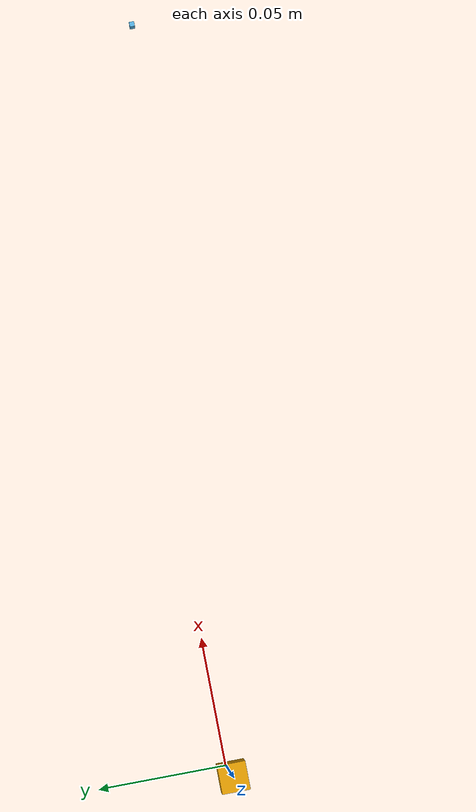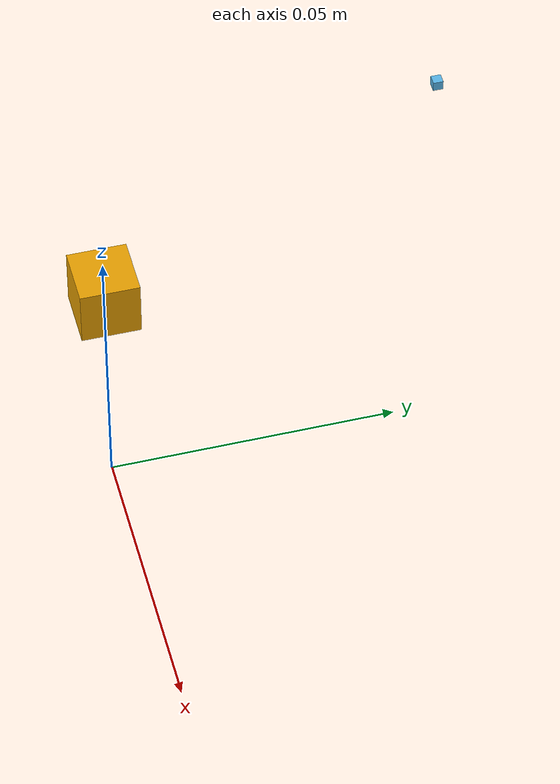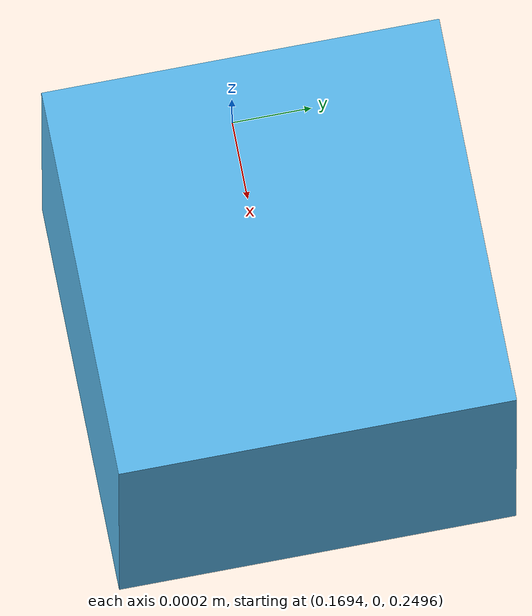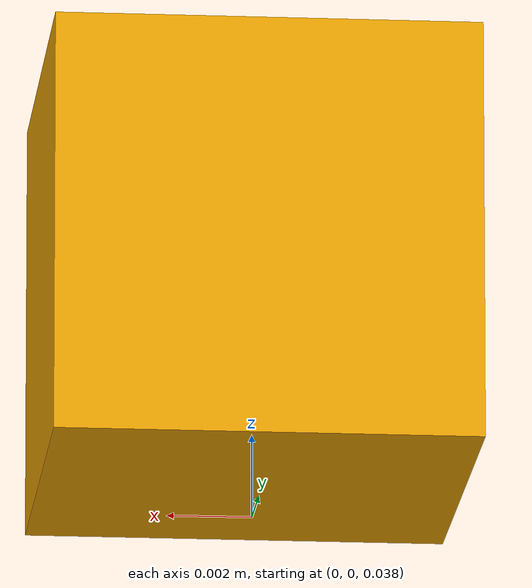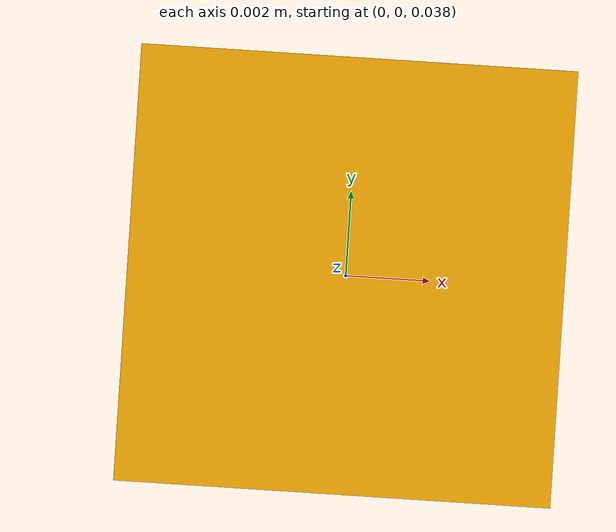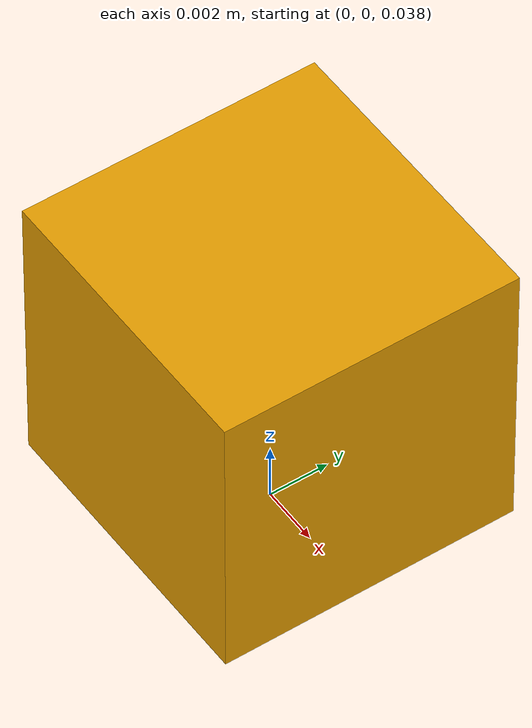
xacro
<?xml version="1.0" ?>
<robot name="solver" xmlns:xacro="http://www.ros.org/wiki/xacro">

  <!-- Import Rviz colors -->
  <xacro:include filename="$(find solver_description)/urdf/materials.xacro" />

  <!-- base_footprint is a fictitious link(frame) that is on the ground right below base_link_raw origin -->
 <!-- Used for fixing robot to Gazebo 'chassis' -->
    <link name="base_link_raw">
      <visual>
          <origin xyz="0.0 0.0 0.04375" rpy="0 0 0"/>
        <geometry>
          <box size="0.01 0.01 0.01"/>
        </geometry>
      </visual>

    </link>

    <link name="laser_raw">
        <visual>
            <origin xyz="0 0 0 " rpy="0 0 1.57"/>
            <geometry>
            <box size="0.001 0.001 0.001"/>
            </geometry>
        </visual>
    </link>

<!--Joints -->

    <!-- join between chassi and rplidar_a2 links-->
    <joint name="laser_raw" type="fixed">
      <origin rpy="0 0 3.14" xyz="0.17 0 0.25"/>
      <parent link="base_link_raw"/>
      <child link="laser_raw"/>
    </joint>

</robot>

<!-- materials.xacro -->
<robot>

  <material name="black">
    <color rgba="0.0 0.0 0.0 1.0"/>
  </material>

  <material name="blue">
    <color rgba="0.0 0.0 0.8 1.0"/>
  </material>

  <material name="green">
    <color rgba="0.0 0.8 0.0 1.0"/>
  </material>

  <material name="grey">
    <color rgba="0.2 0.2 0.2 1.0"/>
  </material>

  <material name="red">
    <color rgba="0.8 0.0 0.0 1.0"/>
  </material>

  <material name="white">
    <color rgba="1.0 1.0 1.0 1.0"/>
  </material>

</robot>
